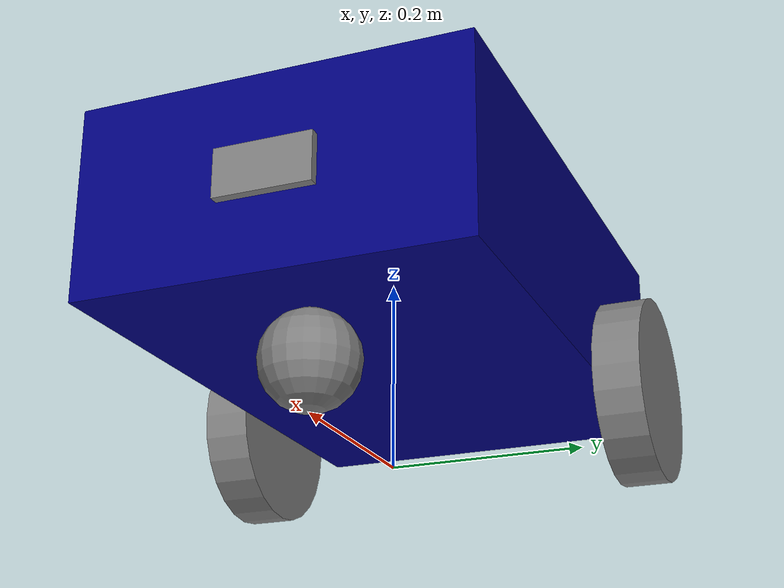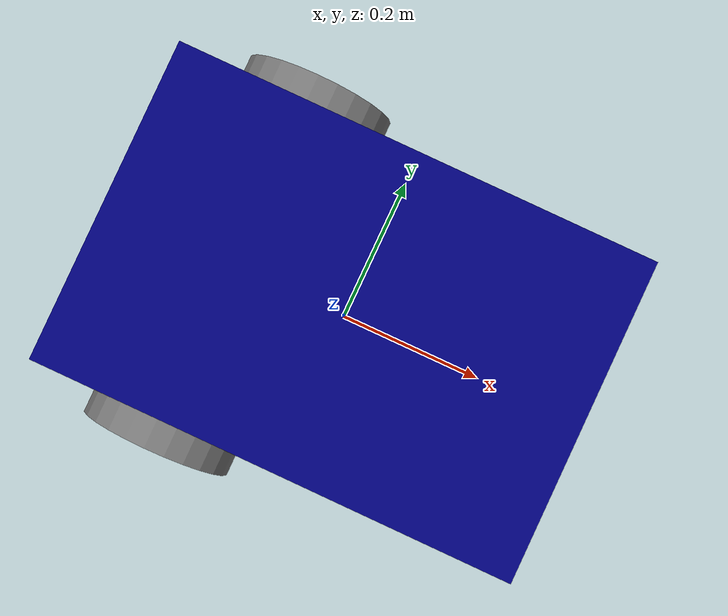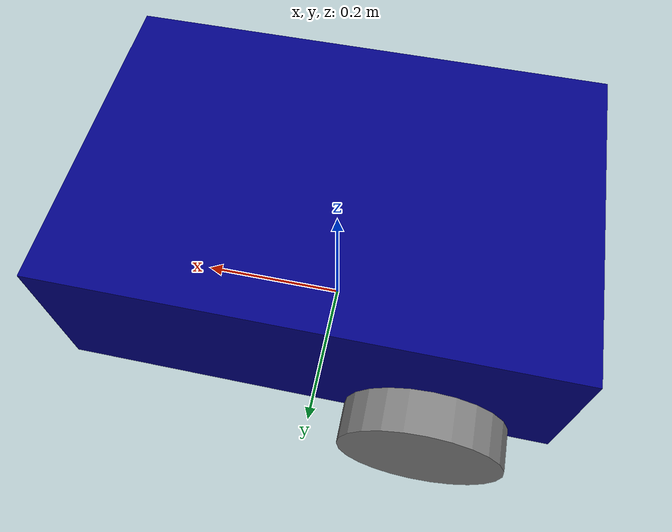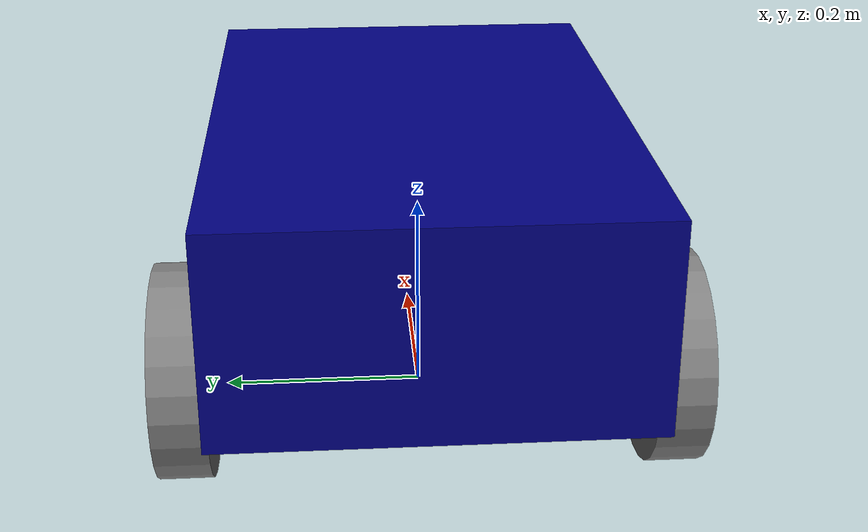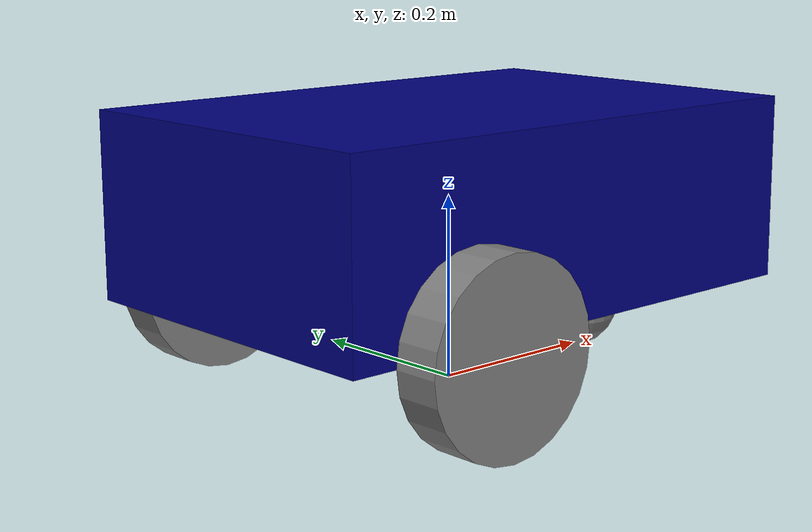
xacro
<?xml version="1.0"?>
<robot name="my_robot" xmlns:xacro="http://www.ros.org/wiki/xacro">

    <xacro:include filename="common_properties.urdf.xacro" />
    <xacro:include filename="mobile_base.urdf.xacro" />
    <xacro:include filename="mobile_base_gazebo.xacro" />
    <xacro:include filename="mobile_base.ros2_control.xacro" />
    <xacro:include filename="camera.xacro" />

</robot>

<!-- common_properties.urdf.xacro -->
<robot xmlns:xacro="http://www.ros.org/wiki/xacro">

    <material name="blue"> <!-- 这里自定义材料，颜色默认都是红色 -->
        <color rgba="0 0 0.5 1"/>
    </material>

    <material name="grey">
        <color rgba="0.5 0.5 0.5 1"/>
    </material>

    <material name="orange">
        <color rgba="1.0 0.5 0.0 1"/>
    </material>

    <material name="yellow">
        <color rgba="1.0 1.0 0.0 1"/>
    </material>

    <xacro:macro name="box_inertia" params="m x y z o_xyz o_rpy">
        <inertial>  <!-- 注意这里是末尾有l的（下面那个末尾没有l）-->
            <mass value="${m}" />  <!-- 质量 -->
            <!-- 转动惯量的原点设置，为了与物体模型匹配，所以他俩的原点设置是一样的 -->
            <origin xyz="${o_xyz}" rpy="${o_rpy}" />
            <!-- 转动惯量矩阵 详见https://en.wikipedia.org/wiki/List_of_moments_of_inertia-->
            <inertia ixx="${(m/12)*(y*y + z*z)}" ixy="0" ixz="0"
                     iyy="${(m/12)*(x*x + z*z)}" iyz="0"
                     izz="${(m/12)*(x*x + y*y)}" />
        </inertial>
    </xacro:macro>

    <xacro:macro name="cylinder_inertia" params="m r h o_xyz o_rpy">
        <inertial>
            <mass value="${m}" />
            <origin xyz="${o_xyz}" rpy="${o_rpy}" />
            <inertia ixx="${(m/12)*(3*r*r + h*h)}" ixy="0" ixz="0"
                     iyy="${(m/12)*(3*r*r + h*h)}" iyz="0"
                     izz="${(m*r*r)/2}" />
        </inertial>
    </xacro:macro>

    <xacro:macro name="sphere_inertia" params="m r o_xyz o_rpy">
        <inertial>
            <mass value="${m}" />
            <origin xyz="${o_xyz}" rpy="${o_rpy}" />
            <inertia ixx="${(2/5)*m*r*r}" ixy="0" ixz="0"
                     iyy="${(2/5)*m*r*r}" iyz="0"
                     izz="${(2/5)*m*r*r}" />
        </inertial>
    </xacro:macro>

</robot>

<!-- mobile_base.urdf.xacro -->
<robot xmlns:xacro="http://www.ros.org/wiki/xacro">

    <xacro:property name="base_length" value="0.6" />
    <xacro:property name="base_width" value="0.4" />
    <xacro:property name="base_height" value="0.2" />
    <xacro:property name="wheel_radius" value="0.1" />
    <xacro:property name="wheel_length" value="0.05" />

    <link name="base_link">
        <visual> <!-- 可视化部分 -->
            <geometry> <!-- 几何体 -->
                <box size="${base_length} ${base_width} ${base_height}"/> <!-- 长方形（长宽高）（单位m） -->
            </geometry>
            <origin xyz="0 0 ${base_height / 2.0}" rpy="0 0 0"/>
            <!-- 这个origin其实是物体的中心相较于物体的坐标系的位置，也就是物体坐标系-》物体中心，
            注意的是默认初始情况下物体的坐标系就在物体的中心 -->
            <material name="blue"/>
        </visual>

        <collision> <!-- 碰撞设置 (可以发现碰撞设置跟可视化设置基本差不多)-->
            <geometry> <!-- 几何体 -->
                <box size="${base_length} ${base_width} ${base_height}"/> <!-- 长方形（长宽高）（单位m） -->
            </geometry>
            <origin xyz="0 0 ${base_height / 2.0}" rpy="0 0 0"/>
        </collision>

        <!-- 转动惯量设置 -->
        <xacro:box_inertia m="5.0" x="${base_length}" y="${base_width}" z="${base_height}"
                           o_xyz="0 0 ${base_height / 2.0}" o_rpy="0 0 0" />
    </link>

    <xacro:macro name="wheel_link" params="prefix">
        <link name="${prefix}_wheel_link">
            <visual>
                <geometry>
                    <cylinder radius="${wheel_radius}" length="${wheel_length}" />
                </geometry>
                <origin xyz="0 0 0" rpy="${pi / 2.0} 0 0" />
                <material name="grey" />
            </visual>

            <collision> <!-- 对于圆柱体来说，碰撞设置最好设置成球体！ -->
                <geometry>
                    <sphere radius="${wheel_radius}" />
                </geometry>
                <origin xyz="0 0 0" rpy="${pi / 2.0} 0 0" />
            </collision>

            <xacro:cylinder_inertia m="1.0" r="${wheel_radius}" h="${wheel_length}"
                                    o_xyz="0 0 0" o_rpy="${pi / 2.0} 0 0" />
        </link>
    </xacro:macro>

    <xacro:wheel_link prefix="right" />
    <xacro:wheel_link prefix="left"  />

    <link name="caster_wheel_link">
        <visual>
            <geometry>
                <sphere radius="${wheel_radius / 2.0}" />
            </geometry>
            <origin xyz="0 0 0" rpy="0 0 0" />
            <material name="grey" />
        </visual>

        <collision>
            <geometry>
                <sphere radius="${wheel_radius / 2.0}" />
            </geometry>
            <origin xyz="0 0 0" rpy="0 0 0" />
        </collision>

        <xacro:sphere_inertia m="0.5" r="${wheel_radius / 2.0}"
                              o_xyz="0 0 0" o_rpy="0 0 0" />
    </link>

    <link name="base_footlink">
    </link>

    <joint name="base_joint" type="fixed">
        <parent link="base_footlink" />
        <child link="base_link" />
        <origin xyz="0 0 ${wheel_radius}" rpy="0 0 0" />
    </joint>

    <joint name="base_right_wheel_joint" type="continuous">
        <parent link="base_link" />
        <child link="right_wheel_link" />
        <origin xyz="${-base_length / 4.0} ${-base_width / 2.0 + -wheel_length / 2.0} 0" rpy="0 0 0" />
        <axis xyz="0 1 0" />
    </joint>

    <joint name="base_left_wheel_joint" type="continuous">
        <parent link="base_link" />
        <child link="left_wheel_link" />
        <origin xyz="${-base_length / 4.0} ${base_width / 2.0 + wheel_length / 2.0} 0" rpy="0 0 0" />
        <axis xyz="0 1 0" />
    </joint>

    <joint name="base_caster_wheel_joint" type="fixed">
        <parent link="base_link" />
        <child link="caster_wheel_link" />
        <origin xyz="${base_length / 3.0} 0 ${-wheel_radius / 2.0}" rpy="0 0 0" />
    </joint>

</robot>

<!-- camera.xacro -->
<robot xmlns:xacro="http://www.ros.org/wiki/xacro">

    <xacro:property name="camera_length" value="0.01" />
    <xacro:property name="camera_width" value="0.1" />
    <xacro:property name="camera_height" value="0.05" />

    <link name="camera_link">
        <visual>
            <geometry>
                <box size="${camera_length} ${camera_width} ${camera_height}" />
            </geometry>
            <origin xyz="0 0 0" rpy="0 0 0" />
            <material name="grey" />
        </visual>
        <collision>
            <geometry>
                <box size="${camera_length} ${camera_width} ${camera_height}" />
            </geometry>
            <origin xyz="0 0 0" rpy="0 0 0" />
        </collision>

        <xacro:box_inertia m="0.1" x="${camera_length}" y="${camera_width}" z="${camera_height}"
                           o_xyz="0 0 0" o_rpy="0 0 0" />

    </link>

    <joint name="base_camera_joint" type="fixed">
        <parent link="base_link" />
        <child link="camera_link" />
        <origin xyz="${(base_length + camera_length) / 2.0} 0 ${base_height / 2.0}" rpy="0 0 0" />
    </joint>

    <link name="camera_link_optical" />

    <joint name="camera_optical_joint" type="fixed">
        <origin xyz="0 0 0" rpy="${-pi/2} 0 ${-pi/2}"/>
        <parent link="camera_link"/>
        <child link="camera_link_optical"/>
    </joint>

    <!--关于gazebo插件中reference vs plugin 的区别-->
    <!-- reference="camera_link" 指定这个Gazebo配置应用到哪个link上 -->
    <!-- plugin 通常用于加载特定的Gazebo插件库 -->
    <gazebo reference="camera_link">
        <sensor name="camera" type="camera">
            <camera>
                <horizontal_fov>1.3962634</horizontal_fov>  <!--水平视野角度 (1.3962634弧度 ≈ 80度)-->
                <image> <!--图像参数-->
                    <width>640</width>  <!--图像分辨率 640x480-->
                    <height>480</height>
                    <format>R8G8B8</format> <!--颜色格式 R8G8B8 (RGB 8位)-->
                </image>
                <clip>  <!--渲染距离-->
                    <near>0.1</near>    <!--最近渲染距离 0.1米-->
                    <far>15</far>   <!--最远渲染距离 15米-->
                </clip>
                <noise>
                    <type>gaussian</type>
                    <mean>0.0</mean>
                    <stddev>0.007</stddev>
                </noise>
                <optical_frame_id>camera_link_optical</optical_frame_id>
                <camera_info_topic>camera/camera_info</camera_info_topic> <!--相机信息话题名-->
            </camera>
            <always_on>1</always_on>    <!--传感器始终开启-->
            <update_rate>20</update_rate>   <!--更新频率 20Hz-->
            <visualize>true</visualize> <!--在Gazebo中可视化-->
            <topic>camera/image_raw</topic> <!--图像数据发布话题名-->
        </sensor>
    </gazebo>

</robot>
